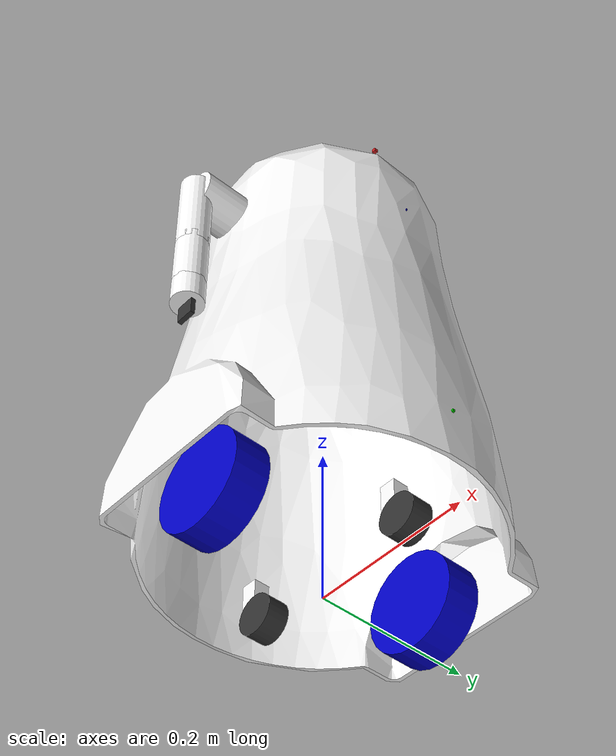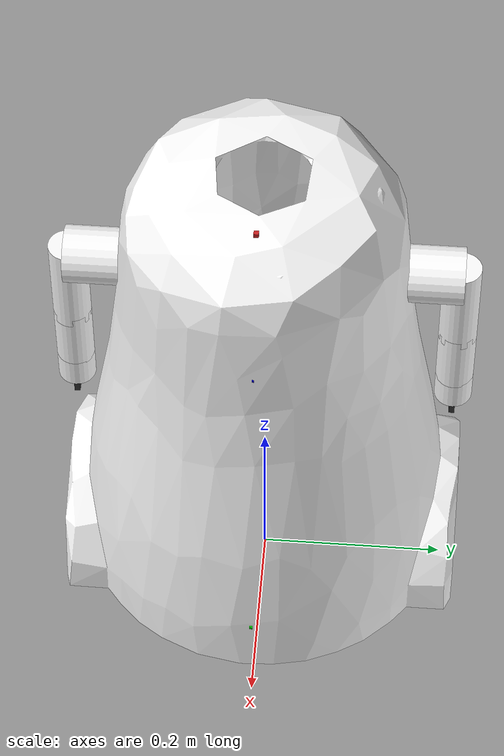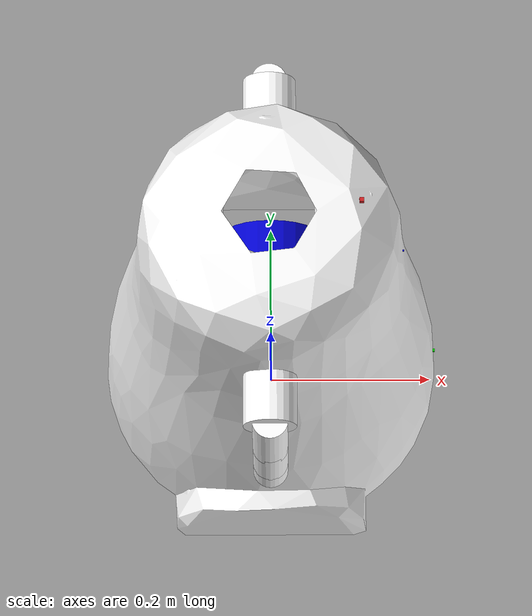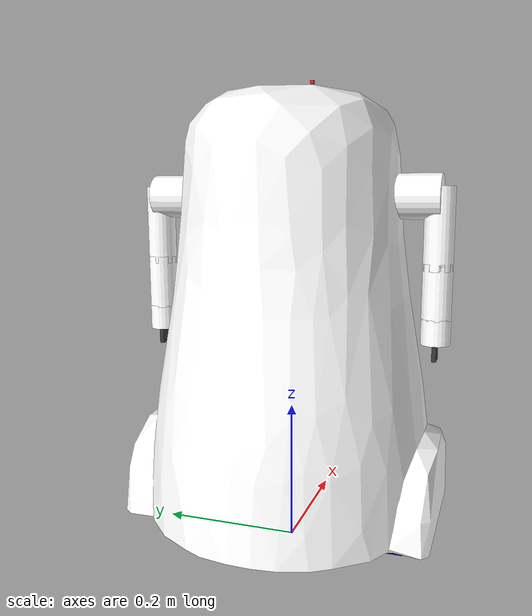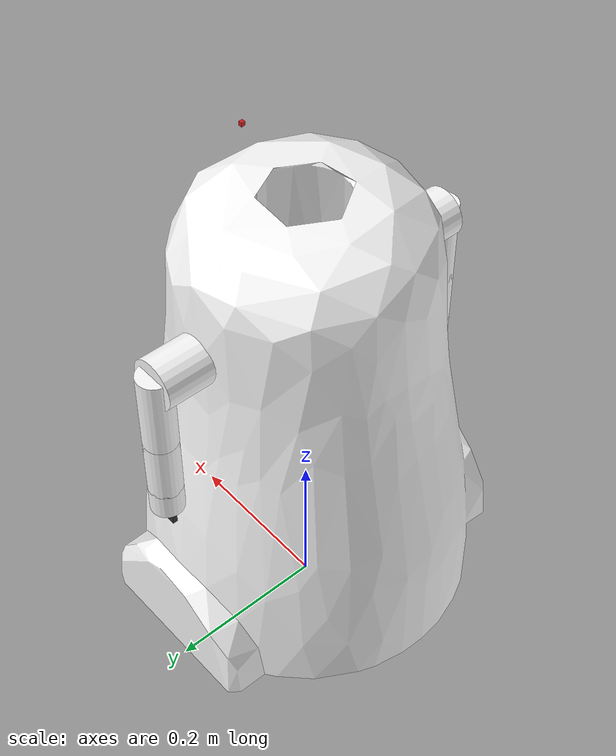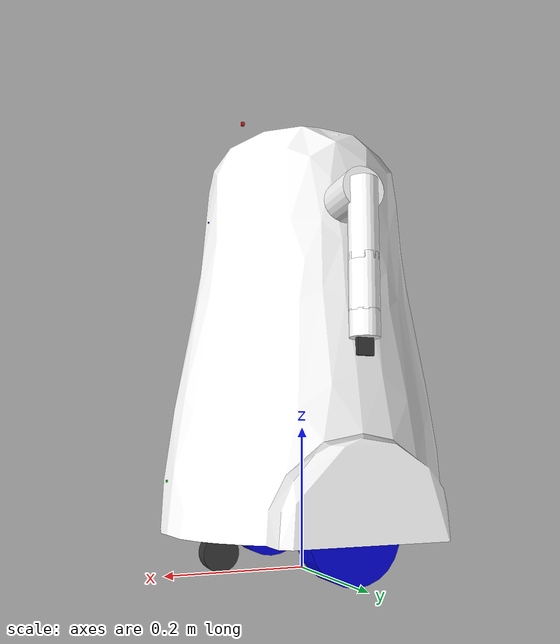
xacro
<?xml version="1.0"?>
<robot name="arca3" xmlns:xacro="http://ros.org/wiki/xacro">

    <!-- Inluir archivos de materiales y colores-->
    <material name="blue">
        <color rgba="0 0 0.8 1"/>
    </material>

    <material name="green">
        <color rgba="0.0 0.8 0.0 1.0"/>
    </material>

    <material name="black">
        <color rgba="0.0 0.0 0.0 1.0"/>
    </material>

    <material name="white">
        <color rgba="1.0 1.0 1.0 1.0"/>
    </material>

    <material name="red">
        <color rgba="0.80078125 0.12890625 0.1328125 1.0"/>
    </material>

    <material name="grey">
        <color rgba="0.2 0.2 0.2 1.0"/>
    </material>

    <!--                 PROPERTIES                  -->
    <!-- Caster wheels property -->
    <xacro:property name="cwm" value="0.5" />                                   <!-- cwm: caster wheel mass, [kg] -->
    <xacro:property name="cwd" value="0.05" />                                  <!-- cwd: caster wheel diameter, [m]  -->
    <xacro:property name="cwr" value="${cwd/2}" />                              <!-- cwr: caster wheel radius, [m]  -->
    <xacro:property name="cwo" value="0.015" />                                 <!-- cwo: caster wheel offset, [m]  -->
    <xacro:property name="cwt" value="0.027" />                                 <!-- cwt: caster wheel tread, [m]  -->
    <xacro:property name="cwh" value="0.06" />                                  <!-- cwh: caster wheel heat, [m]  -->

    <xacro:property name="cw_ixx" value="${(cwm/12.0)*(3*cwr*cwr+cwt*cwt)}" />  <!-- cw_ixx: caster wheel inertia x axis, [kgm^2]  -->
    <xacro:property name="cw_iyy" value="${cw_ixx}" />                          <!-- cw_iyy: caster wheel inertia y axis, [kgm^2]  -->
    <xacro:property name="cw_izz" value="${(cwm*cwr*cwr)/2.0}" />               <!-- cw_izz: caster wheel inertia z axis, [kgm^2]  -->

    <xacro:property name="yc_dist" value="0.149" />                             <!-- yc_dist: distance from the origin to the wheel along the y axis, [m]  -->

    <!-- Driving wheels property -->
    <xacro:property name="dwm" value="0.6" />                                   <!-- dwm: driving wheel mass, [kg] -->
    <xacro:property name="dwd" value="0.125" />                                 <!-- dwd: driving wheel diameter, [m]  -->
    <xacro:property name="dwr" value="${dwd/2}" />                              <!-- dwr: driving wheel radius, [m]  -->
    <xacro:property name="dwt" value="0.044" />                                 <!-- dwt: driving wheel tread, [m]  -->

    <xacro:property name="dw_ixx" value="${(dwm/12.0)*(3*dwr*dwr+dwt*dwt)}" />  <!-- dw_ixx: driving wheel inertia x axis, [kgm^2]  -->
    <xacro:property name="dw_iyy" value="${dw_ixx}" />                          <!-- dw_iyy: driving wheel inertia y axis, [kgm^2]  -->
    <xacro:property name="dw_izz" value="${(dwm*dwr*dwr)/2.0}" />               <!-- dw_izz: driving wheel inertia z axis, [kgm^2]  -->

    <xacro:property name="xd_dist" value="0.11" />                              <!-- xd_dist: distance from the origin to the wheel along the x axis, [m]  -->

    <!-- chassis property -->
    <xacro:property name="cm" value="10.0" />                                   <!-- cm: chassis mass, [kg] -->
    <xacro:property name="clod" value="0.300" />                                <!-- clod: chassis longitudinal dimension, [m]  -->
    <xacro:property name="clad" value="0.240" />                                <!-- clad: chassis lateral dimension, [m]  -->
    <xacro:property name="ch" value="1" />                                      <!-- ch: chassis height, [m]  -->

    <xacro:property name="c_ixx" value="${(cm/12.0)*(clad*clad+ch*ch)}" />      <!-- c_ixx: chassis inertia x axis, [kgm^2]  -->
    <xacro:property name="c_iyy" value="${(cm/12.0)*(clod*clod+ch*ch)}" />      <!-- c_iyy: chassis inertia y axis, [kgm^2]  -->
    <xacro:property name="c_izz" value="${(cm/12.0)*(clod*clod+clad*clad)}" />  <!-- c_izz: chassis inertia z axis, [kgm^2]  -->

    <xacro:property name="zch_dist" value="0.105" />                            <!-- zch_dist: distance from the ground to the bottom of the chasis, [m]  -->

    <!-- caster_wheel_link property -->
    <xacro:property name="cwlm" value="0.050" />                                <!-- cwlm: caster wheel link mass, [kg] -->
    <xacro:property name="cwlh" value="${(cwh-cwr)}" />                         <!-- cwlh: caster wheel link height, [m]  -->

    <!-- Sensors -->
    <xacro:property name="laser_len" value="0.003" />                           <!-- laser_len: length of the laser (it's a cube), [m]-->
    <xacro:property name="dcam_len" value="0.002" />                            <!-- dcam_len: length of the depth camera (it's a cube), [m]-->
    <xacro:property name="camera_len" value="0.005" />                          <!-- camera_len: length of the camera (it's a cube), [m] -->

    <!-- Arms-->

    <!--                    MACROS                   -->
    <!-- caster_wheel_link macro -->
    <xacro:macro name="caster_wheel_link" params="number colour">

        <link name="caster_wheel_M${number}_link">

            <visual>
                <origin xyz="0 0 0" rpy="0 0 0"/>
                <geometry>
                    <box size="0.020 0.02 ${cwlh}"/>
                </geometry>
                <material name="white"/>
            </visual>

            <collision>
                <origin xyz="0 0 0" rpy="0 0 0"/>
                <geometry>
                    <box size="0.020 0.020 ${cwlh}"/>
                </geometry>
            </collision>

            <inertial>
                <origin xyz="0 0 0" rpy="0 0 0"/>
                <mass value="${cwlm}" />
                <inertia ixx="0" ixy="0.0" ixz="0.0" iyy="0" iyz="0.0" izz="0"/>
            </inertial>

        </link>

        <gazebo reference="caster_wheel_M${number}_link">
            <kp>10000.0</kp>
            <kd>10000.0</kd>
            <mu1>10.0</mu1>
            <mu2>10.0</mu2>
            <material>Gazebo/Grey</material>
        </gazebo>

        <link name="wheel_M${number}_link">

            <visual>
                <origin xyz="0 0 0" rpy="0 0 0"/>
                <geometry>
                    <cylinder length="${cwt}" radius="${cwr}"/>
                </geometry>
                <material name="grey"/>
            </visual>

            <collision>
                <origin xyz="0 0 0" rpy="0 0 0"/>
                <geometry>
                    <cylinder length="${cwt}" radius="${cwr}"/>
                </geometry>
            </collision>

            <inertial>
                <origin xyz="0 0 0" rpy="0 0 0"/>
                <mass value="${cwm}" />
                <inertia ixx="${cw_ixx}" ixy="0.0" ixz="0.0" iyy="${cw_iyy}" iyz="0.0" izz="${cw_izz}"/>
            </inertial>

        </link>

        <gazebo reference="wheel_M${number}_link">
            <kp>10000.0</kp>
            <kd>10000.0</kd>
            <mu1>10.0</mu1>
            <mu2>10.0</mu2>
            <material>Gazebo/${colour}</material>
        </gazebo>

        <joint name="caster_wheel_M${number}_wheel_M${number}_joint" type="continuous">
            <parent link="caster_wheel_M${number}_link"/>
            <child link="wheel_M${number}_link"/>
            <origin xyz="${cwo} 0 ${-cwlh}" rpy="1.570796 0 0"/>
            <limit  effort="1.0" velocity="0.005"/>
            <axis xyz="0 0 1"/>
        </joint>

    </xacro:macro>

    <!-- driving_wheel_link macro -->
    <xacro:macro name="driving_wheel_link" params="number colour">

        <link name="driving_wheel_M${number}_link">

            <visual>
                <origin xyz="0 0 0" rpy="0 0 0"/>
                <geometry>
                    <cylinder length="${dwt}" radius="${dwr}"/>
                </geometry>
                <material name="blue"/>
            </visual>

            <collision>
                <origin xyz="0 0 0" rpy="0 0 0"/>
                <geometry>
                    <cylinder length="${dwt}" radius="${dwr}"/>
                </geometry>
            </collision>

            <inertial>
                <origin xyz="0 0 0" rpy="0 0 0"/>
                <mass value="${dwm}" />
                <inertia ixx="${dw_ixx}" ixy="0.0" ixz="0.0" iyy="${dw_iyy}" iyz="0.0" izz="${dw_izz}"/>
            </inertial>

        </link>

        <gazebo reference="driving_wheel_M${number}_link">
            <kp>10000.0</kp>
            <kd>10000.0</kd>
            <mu1>10.0</mu1>
            <mu2>10.0</mu2>
            <material>Gazebo/${colour}</material>
        </gazebo>

    </xacro:macro>

    <!-- arm link macro -->
    <xacro:macro name="m_link_cylinder" params="name origin_xyz origin_rpy length radius mass ixx ixy ixz iyy iyz izz vis_material">
        <link name="${name}">
        <inertial>
            <mass value="${mass}" />
            <origin rpy="${origin_rpy}" xyz="${origin_xyz}" />
            <inertia ixx="${ixx}" ixy="${ixy}" ixz="${ixz}" iyy="${iyy}" iyz="${iyz}" izz="${izz}" />
        </inertial>
        <collision>
            <origin rpy="${origin_rpy}" xyz="${origin_xyz}" />
            <geometry>
            <cylinder length="${length}" radius="${radius}"/>
            </geometry>
        </collision>
        <visual>
            <origin rpy="${origin_rpy}" xyz="${origin_xyz}" />
            <geometry>
            <cylinder length="${length}" radius="${radius}"/>
            </geometry>
            <material name="${vis_material}"/>
        </visual>
        </link>
    </xacro:macro>

    <!-- joint base-arm macro -->
    <xacro:macro name="m_joint" params="name type axis_xyz origin_rpy origin_xyz parent child limit_e limit_l limit_u limit_v">
        <joint name="${name}" type="${type}">
            <axis xyz="${axis_xyz}" />
            <limit effort="${limit_e}" lower="${limit_l}" upper="${limit_u}" velocity="${limit_v}" />
            <origin rpy="${origin_rpy}" xyz="${origin_xyz}" />
            <parent link="${parent}" />
            <child link="${child}" />
        </joint>
        <transmission name="trans_${name}">
            <type>transmission_interface/SimpleTransmission</type>
            <joint name="${name}">
                <hardwareInterface>hardware_interface/EffortJointInterface</hardwareInterface>
            </joint>
            <actuator name="motor_${name}">
                <hardwareInterface>hardware_interface/EffortJointInterface</hardwareInterface>
                <mechanicalReduction>1</mechanicalReduction>
            </actuator>
        </transmission>
    </xacro:macro>

    <!-- gripper box macro -->
    <xacro:macro name="m_link_box" params="name origin_xyz origin_rpy size mass ixx ixy ixz iyy iyz izz vis_material">
        <link name="${name}">
            <inertial>
                <mass value="${mass}" />
                <origin rpy="${origin_rpy}" xyz="${origin_xyz}" />
                <inertia ixx="${ixx}" ixy="${ixy}" ixz="${ixz}" iyy="${iyy}" iyz="${iyz}" izz="${izz}" />
            </inertial>
            <collision>
                <origin rpy="${origin_rpy}" xyz="${origin_xyz}" />
                <geometry>
                    <box size="${size}" />
                </geometry>
            </collision>
            <visual>
                <origin rpy="${origin_rpy}" xyz="${origin_xyz}" />
                <geometry>
                    <box size="${size}" />
                </geometry>
                <material name="${vis_material}"/>
            </visual>
        </link>
    </xacro:macro>

    <!-- driving wheel transmission -->

    <!--              ROBOT DESCRIPTION              -->
    <!-- Chassis -->
    <link name="base_link">
        <visual>
            <origin xyz="0 0 ${zch_dist}" rpy="0 0 0"/>
            <geometry>
                <mesh filename="package://arca3_description/urdf/meshes/Estructura_arca.stl" scale="0.01 0.01 0.01"/>
            </geometry>
            <material name="white"/>
        </visual>

        <collision>
            <origin xyz="0 0 ${zch_dist}" rpy="0 0 0"/>
            <geometry>
                <mesh filename="package://arca3_description/urdf/meshes/Estructura_arca.stl" scale="0.01 0.01 0.01"/>
            </geometry>
        </collision>

        <inertial>
            <origin xyz="0 0 ${zch_dist}" rpy="0 0 0"/>
            <mass value="${cm}"/>
            <inertia ixx="${c_ixx}" ixy="0.0" ixz="0.0" iyy="${c_iyy}" iyz="0.0" izz="${c_izz}"/>
        </inertial>
    </link>

    <gazebo reference="base_link">
        <kp>10000.0</kp>
        <kd>10000.0</kd>
        <mu1>10.0</mu1>
        <mu2>10.0</mu2>
        <material>Gazebo/Grey</material>
    </gazebo>

    <!-- Caster wheels and link -->
    <xacro:caster_wheel_link number="1" colour="Grey"/>
    <xacro:caster_wheel_link number="2" colour="Grey"/>

    <!-- Joint among chassis and caster wheels -->
    <joint name="base_link_caster_wheel_M1_joint" type="continuous">
    	<parent link="base_link"/>
    	<child link="caster_wheel_M1_link"/>
        <origin xyz="${xd_dist} 0 ${dwr}" rpy="0 0 0"/>
        <limit effort="1.0" velocity="1"/>
        <axis xyz="0 0 1"/>
	</joint>

    <joint name="base_link_caster_wheel_M2_joint" type="continuous">
    	<parent link="base_link"/>
    	<child link="caster_wheel_M2_link"/>
        <origin xyz="-${xd_dist} 0 ${dwr}" rpy="0 0 0"/>
        <limit effort="1.0" velocity="1"/>
        <axis xyz="0 0 1"/>
	</joint>

    <!-- Driving wheels -->
    <xacro:driving_wheel_link number="1" colour="Blue"/>
    <xacro:driving_wheel_link number="2" colour="Blue"/>

    <!-- Joint among chassis and driving wheels -->
    <joint name="joint_base_link_driving_wheel_M1" type="continuous">
    	<parent link="base_link"/>
    	<child link="driving_wheel_M1_link"/>
        <origin xyz="0 -${yc_dist} ${dwr}" rpy="1.57 0 0"/>
        <limit effort="15.0" velocity="0.1"/>
        <axis xyz="0 0 -1"/>
	</joint>

    <joint name="joint_base_link_driving_wheel_M2" type="continuous">
    	<parent link="base_link"/>
    	<child link="driving_wheel_M2_link"/>
        <origin xyz="0 ${yc_dist} ${dwr}" rpy="1.57 0 0"/>
        <limit effort="15.0" velocity="0.1"/>
        <axis xyz="0 0 -1"/>
	</joint>

    <!--                 LEFT ARM                     -->

    <!-- Link1: Left arm arca -->
    <m_link_cylinder name="la_link1"
                     origin_xyz="0 0.02 0" origin_rpy="1.5708 0 0"
                     length="0.09" radius="0.03"
                     mass="1"
                     ixx="1.3235" ixy="0" ixz="0"
                     iyy="1.3235" iyz="0"
                     izz="0.9655"
                     vis_material="white"/>

    <!-- Joint1: base_link - Link1 -->
    <m_joint name="joint_base_to_lalink1" type="revolute"
             axis_xyz="0 1 0"
             origin_rpy="0 0 0" origin_xyz="0 0.14 0.5"
             parent="base_link" child="la_link1"
             limit_e="10000" limit_l="-3.4907" limit_u="0.7854" limit_v="0.6" />

    <!-- Link2: Brazo arca -->
    <m_link_cylinder name="la_link2"
                     origin_xyz="0 0.0 -0.042" origin_rpy="0 0 0"
                     length="0.11" radius="0.02"
                     mass="1"
                     ixx="1.3235" ixy="0" ixz="0"
                     iyy="1.3235" iyz="0"
                     izz="0.9655"
                     vis_material="white"/>

    <!-- Joint2: Link1 - Link2 -->
    <m_joint name="joint_lalink1_to_lalink2" type="revolute"
             axis_xyz="1 0 0"
             origin_rpy="0 0 0" origin_xyz="0 0.062 0"
             parent="la_link1" child="la_link2"
             limit_e="10000" limit_l="-0.087" limit_u="1.745" limit_v="0.6" />

    <!-- Link3: Brazo arca -->
    <m_link_cylinder name="la_link3"
                     origin_xyz="0 0.0 -0.028" origin_rpy="0 0 0"
                     length="0.075" radius="0.02"
                     mass="1"
                     ixx="1.3235" ixy="0" ixz="0"
                     iyy="1.3235" iyz="0"
                     izz="0.9655"
                     vis_material="white"/>

    <!-- Joint3: Link2 - Link3 -->
    <m_joint name="joint_lalink2_to_lalink3" type="revolute"
             axis_xyz="0 1 0"
             origin_rpy="0 0 0" origin_xyz="0 0 -0.097"
             parent="la_link2" child="la_link3"
             limit_e="10000" limit_l="-2.094" limit_u="0.0" limit_v="0.6" />

    <!-- Link4: Brazo arca -->
    <m_link_cylinder name="la_link4"
                     origin_xyz="0 0.0 -0.017" origin_rpy="0 0 0"
                     length="0.035" radius="0.02"
                     mass="1"
                     ixx="1.3235" ixy="0" ixz="0"
                     iyy="1.3235" iyz="0"
                     izz="0.9655"
                     vis_material="white"/>

    <!-- Joint4: Link3 - Link4 -->
    <m_joint name="joint_lalink3_to_lalink4" type="revolute"
             axis_xyz="0 0 1"
             origin_rpy="0 0 0" origin_xyz="0 0.0 -0.064"
             parent="la_link3" child="la_link4"
             limit_e="10000" limit_l="-2.094" limit_u="0.0" limit_v="0.6" />

    <!-- Link5: manito -->
    <m_link_box name="la_link5"
                origin_xyz="0 0.0 -0.002" origin_rpy="0 0 1.5708"
                size="0.006 0.023 0.04" mass="1"
                ixx="1.3235" ixy="0" ixz="0"
                iyy="1.3235" iyz="0"
                izz="0.9655"
                vis_material="grey"/>

    <!-- Joint4: Link4 - Link5 -->
    <m_joint name="joint_lalink4_to_lalink5" type="revolute"
             axis_xyz="1 0 0"
             origin_rpy="0 0 0" origin_xyz="0 0.0 -0.035"
             parent="la_link4" child="la_link5"
             limit_e="10000" limit_l="-0.7854" limit_u="0.0" limit_v="0.6" />

    <!--                 RIGHT ARM                 -->
    <!-- Link1: right arm arca -->
    <m_link_cylinder name="ra_link1"
                     origin_xyz="0 -0.02 0" origin_rpy="1.5708 0 0"
                     length="0.09" radius="0.03"
                     mass="1"
                     ixx="1.3235" ixy="0" ixz="0"
                     iyy="1.3235" iyz="0"
                     izz="0.9655"
                     vis_material="white"/>

    <!-- Joint1: base_link - Link1 -->
    <m_joint name="joint_base_to_ralink1" type="revolute"
             axis_xyz="0 1 0"
             origin_rpy="0 0 0" origin_xyz="0 -0.14 0.5"
             parent="base_link" child="ra_link1"
             limit_e="10000" limit_l="-3.4907" limit_u="0.7854" limit_v="0.6" />

    <!-- Link2: Brazo arca -->
    <m_link_cylinder name="ra_link2"
                     origin_xyz="0 0.0 -0.042" origin_rpy="0 0 0"
                     length="0.11" radius="0.02"
                     mass="1"
                     ixx="1.3235" ixy="0" ixz="0"
                     iyy="1.3235" iyz="0"
                     izz="0.9655"
                     vis_material="white"/>

    <!-- Joint2: Link1 - Link2 -->
    <m_joint name="joint_ralink1_to_ralink2" type="revolute"
             axis_xyz="1 0 0"
             origin_rpy="0 0 0" origin_xyz="0 -0.062 0"
             parent="ra_link1" child="ra_link2"
             limit_e="10000" limit_l="-1.745" limit_u="0.087" limit_v="0.6" />

    <!-- Link3: Brazo arca -->
    <m_link_cylinder name="ra_link3"
                     origin_xyz="0 0.0 -0.028" origin_rpy="0 0 0"
                     length="0.075" radius="0.02"
                     mass="1"
                     ixx="1.3235" ixy="0" ixz="0"
                     iyy="1.3235" iyz="0"
                     izz="0.9655"
                     vis_material="white"/>

    <!-- Joint3: Link2 - Link3 -->
    <m_joint name="joint_ralink2_to_ralink3" type="revolute"
             axis_xyz="0 1 0"
             origin_rpy="0 0 0" origin_xyz="0 0 -0.097"
             parent="ra_link2" child="ra_link3"
             limit_e="10000" limit_l="-2.094" limit_u="0.0" limit_v="0.6" />

    <!-- Link4: Brazo arca -->
    <m_link_cylinder name="ra_link4"
                     origin_xyz="0 0.0 -0.017" origin_rpy="0 0 0"
                     length="0.035" radius="0.02"
                     mass="1"
                     ixx="1.3235" ixy="0" ixz="0"
                     iyy="1.3235" iyz="0"
                     izz="0.9655"
                     vis_material="white"/>

    <!-- Joint4: Link3 - Link4 -->
    <m_joint name="joint_ralink3_to_ralink4" type="revolute"
             axis_xyz="0 0 1"
             origin_rpy="0 0 0" origin_xyz="0 0.0 -0.064"
             parent="ra_link3" child="ra_link4"
             limit_e="10000" limit_l="-2.094" limit_u="0.0" limit_v="0.6" />

    <!-- Link5: manito -->
    <m_link_box name="ra_link5"
                origin_xyz="0 0.0 -0.002" origin_rpy="0 0 1.5708"
                size="0.006 0.023 0.04" mass="1"
                ixx="1.3235" ixy="0" ixz="0"
                iyy="1.3235" iyz="0"
                izz="0.9655"
                vis_material="grey"/>

    <!-- Joint4: Link4 - Link5 -->
    <m_joint name="joint_ralink4_to_ralink5" type="revolute"
             axis_xyz="1 0 0"
             origin_rpy="0 0 0" origin_xyz="0 0.0 -0.035"
             parent="ra_link4" child="ra_link5"
             limit_e="10000" limit_l="0.0" limit_u="0.7854" limit_v="0.6" />

    <!--                 Transmission                 -->

    <!-- PLugin - Gazebo drive controller (diff robot)-->
    <gazebo>
        <plugin name="differential_drive_controller" filename="libgazebo_ros_diff_drive.so">
            <alwaysOn>true</alwaysOn>
            <updateRate>50</updateRate>
            <leftJoint>joint_base_link_driving_wheel_M2</leftJoint>
            <rightJoint>joint_base_link_driving_wheel_M1</rightJoint>
            <wheelSeparation>${clad+dwt}</wheelSeparation>
            <wheelDiameter>${dwd}</wheelDiameter>
            <wheelAcceleration>0.2</wheelAcceleration>
            <wheelTorque>30</wheelTorque>
            <commandTopic>cmd_vel</commandTopic>
            <odometryTopic>odom</odometryTopic>
            <odometryFrame>odom</odometryFrame>
            <robotBaseFrame>base_footprint</robotBaseFrame>
            <publishWheelTF>true</publishWheelTF>
            <publishOdom>true</publishOdom>
            <robotBaseFrame>base_link</robotBaseFrame>
            <publishWheelJointState>true</publishWheelJointState>
            <legacyMode>false</legacyMode>
            <rosDebugLevel>false</rosDebugLevel>
            <publishOdomTF>true</publishOdomTF>
            <odometrySource>1</odometrySource>
            <publishTf>1</publishTf>
        </plugin>
    </gazebo>

    <!-- ros_control plugin -->
    <gazebo>
        <plugin name="gazebo_ros_control" filename="libgazebo_ros_control.so">
            <robotNamespace>/arca3</robotNamespace>
            <robotSimType>gazebo_ros_control/DefaultRobotHWSim</robotSimType>
            <legacyModeNS>true</legacyModeNS>
        </plugin>
    </gazebo>
    <!--                   SENSORS                    -->

    <!-- Sensor Laser in the base -->
    <link name="front_laserscanner_link">
        <visual>
            <origin rpy="0.0 0 0" xyz="0 0 0"/>
            <geometry>
                <box size="${laser_len} ${laser_len} ${laser_len}"/>
            </geometry>
            <material name="green"/>
        </visual>

        <collision>
            <origin rpy="0.0 0 0" xyz="0 0 0"/>
            <geometry>
                <box size="${laser_len} ${laser_len} ${laser_len}"/>
            </geometry>
        </collision>

        <inertial>
            <mass value="1e-5" />
            <origin xyz="0 0 0" rpy="0 0 0"/>
            <inertia ixx="1e-6" ixy="0" ixz="0" iyy="1e-6" iyz="0" izz="1e-6" />
        </inertial>

    </link>

    <joint name="base_front_laserscanner_joint" type="fixed">
        <axis xyz="0 1 0" />
        <parent link="base_link"/>
        <child link="front_laserscanner_link"/>
        <origin xyz="${2*clod/3} 0 ${ch/8}" rpy="0 0 -1.5708"/>
    </joint>

    <gazebo reference="front_laserscanner_link">
        <!-- Gazebo sensor -->
        <sensor type="ray" name="front_rplidar_sensor">
            <pose>0 0 0 0 0 0</pose>
            <visualize>false</visualize> <!-- put True if you want to visualize the range of the laser -->
            <update_rate>40</update_rate>
            <ray>
                <scan>
                    <horizontal>
                        <samples>720</samples>
                        <resolution>1</resolution>
                        <min_angle>0</min_angle>
                        <max_angle>3.1416</max_angle>
                    </horizontal>
                </scan>
                <range>
                    <min>0.10</min>
                    <max>2.5</max>
                    <resolution>0.01</resolution>
                </range>
                <noise>
                    <type>gaussian</type>
                    <mean>0.0</mean>
                    <stddev>0.01</stddev>
                </noise>
            </ray>
            <!-- Gazebo plugin -->
            <plugin name="gazebo_ros_head_hokuyo_controller" filename="libgazebo_ros_laser.so">
                <topicName>front_scan</topicName>
                <frameName>front_laserscanner_link</frameName>
            </plugin>
        </sensor>
        <material> Gazebo/Black</material>
    </gazebo>

    <!-- Depth sensor at the middle -->
    <link name="front_dcamera_link">
      <visual>
        <origin rpy="0.0 0 0" xyz="0 0 0"/>
        <geometry>
          <box size="${dcam_len} ${dcam_len} ${dcam_len}"/>
        </geometry>
        <material name="blue"/>
      </visual>
    </link>

    <joint name="base_front_dcamera_joint" type="fixed">
      <parent link="base_link"/>
      <child link="front_dcamera_link"/>
      <origin xyz="${clod/2} 0 ${ch/2}" rpy="0 0 0"/>
    </joint>

    <gazebo reference="front_dcamera_link">
        <!-- Gazebo sensor-->
        <sensor name="front_depth_camera" type="depth">
            <update_rate>20</update_rate>
            <camera>
                <horizontal_fov>1.047198</horizontal_fov>
                <image>
                <width>640</width>
                <height>480</height>
                <format>R8G8B8</format>
                </image>
                <clip>
                <near>0.05</near>
                <far>3</far>
                </clip>
            </camera>
            <!-- Gazebo plugin-->
            <plugin name="front_depth_link_controller" filename="libgazebo_ros_openni_kinect.so">
                <baseline>0.2</baseline>
                <alwaysOn>true</alwaysOn>
                <updateRate>1.0</updateRate>
                <cameraName>front_dcamera</cameraName>
                <imageTopicName>front_dcamera/color/image_raw</imageTopicName>
                <cameraInfoTopicName>/front_dcamera/color/camera_info</cameraInfoTopicName>
                <depthImageTopicName>/front_dcamera/depth/image_raw</depthImageTopicName>
                <depthImageInfoTopicName>/front_dcamera/depth/camera_info</depthImageInfoTopicName>
                <pointCloudTopicName>/front_dcamera/depth/points</pointCloudTopicName>
                <frameName>front_dcamera_link</frameName>
                <pointCloudCutoff>0.5</pointCloudCutoff>
                <pointCloudCutoffMax>3.0</pointCloudCutoffMax>
                <distortionK1>0.00000001</distortionK1>
                <distortionK2>0.00000001</distortionK2>
                <distortionK3>0.00000001</distortionK3>
                <distortionT1>0.00000001</distortionT1>
                <distortionT2>0.00000001</distortionT2>
                <CxPrime>0</CxPrime>
                <Cx>0</Cx>
                <Cy>0</Cy>
                <focalLength>0</focalLength>
                <hackBaseline>0</hackBaseline>
            </plugin>
        </sensor>
        <material>Gazebo/Green</material>
    </gazebo>

    <!-- Camera in the head -->
    <link name="camera_link">
        <visual>
            <origin xyz="0 0 0" rpy="0 0 0"/>
            <geometry>
                <box size="${camera_len} ${camera_len} ${camera_len}"/>
            </geometry>
            <material name="red"/>
        </visual>

        <collision>
            <origin xyz="0 0 0" rpy="0 0 0"/>
            <geometry>
                <box size="${camera_len} ${camera_len} ${camera_len}"/>
            </geometry>
        </collision>

        <inertial>
            <mass value="1e-5" />
            <origin xyz="0 0 0" rpy="0 0 0"/>
            <inertia ixx="1e-6" ixy="0" ixz="0" iyy="1e-6" iyz="0" izz="1e-6" />
        </inertial>
    </link>

    <joint name="camera_joint" type="fixed">
        <axis xyz="0 1 0" />
        <origin xyz="${clod/3} 0 ${2*ch/3}" rpy="0 0 0"/>
        <parent link="base_link"/>
        <child link="camera_link"/>
    </joint>

    <gazebo reference="camera_link">
        <!-- Gazebo sensor-->
        <sensor type="camera" name="head_camera">
            <update_rate>30.0</update_rate>
            <camera name="head">
            <horizontal_fov>1.3962634</horizontal_fov>
            <image>
                <width>800</width>
                <height>800</height>
                <format>R8G8B8</format>
            </image>
            <clip>
                <near>0.02</near>
                <far>300</far>
            </clip>
            <noise>
                <type>gaussian</type>
                <mean>0.0</mean>
                <stddev>0.007</stddev>
            </noise>
            </camera>
            <!-- Gazebo plugin-->
            <plugin name="camera_controller" filename="libgazebo_ros_camera.so">
            <alwaysOn>true</alwaysOn>
            <updateRate>0.0</updateRate>
            <cameraName>head_camera</cameraName>
            <imageTopicName>head_camera/image_raw</imageTopicName>
            <cameraInfoTopicName>head_camera/camera_info</cameraInfoTopicName>
            <frameName>camera_link</frameName>
            <hackBaseline>0.07</hackBaseline>
            <distortionK1>0.0</distortionK1>
            <distortionK2>0.0</distortionK2>
            <distortionK3>0.0</distortionK3>
            <distortionT1>0.0</distortionT1>
            <distortionT2>0.0</distortionT2>
            </plugin>
        </sensor>
        <material>Gazebo/Red</material>
    </gazebo>

</robot>
